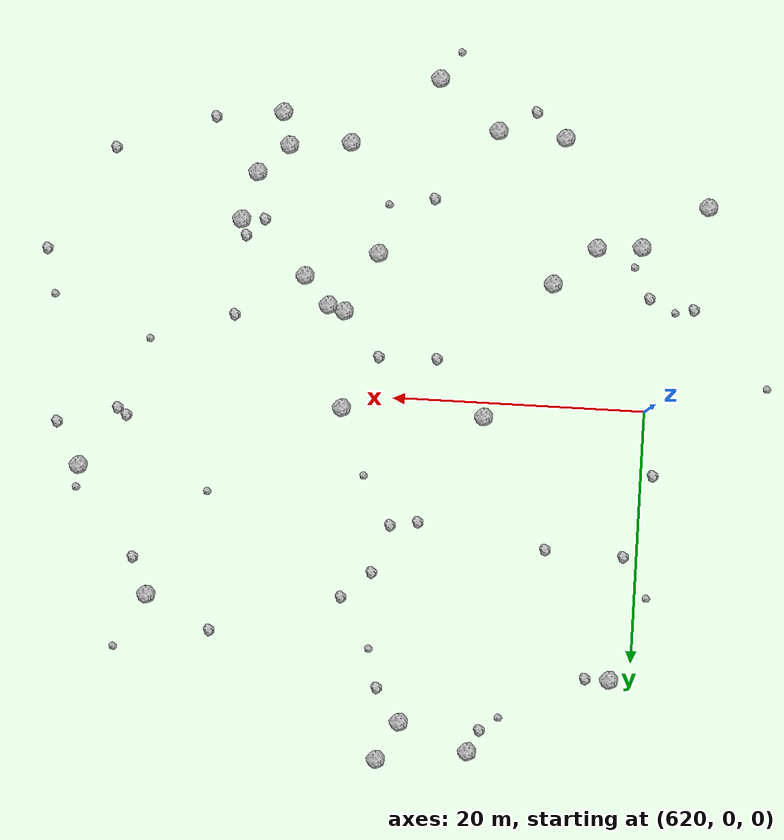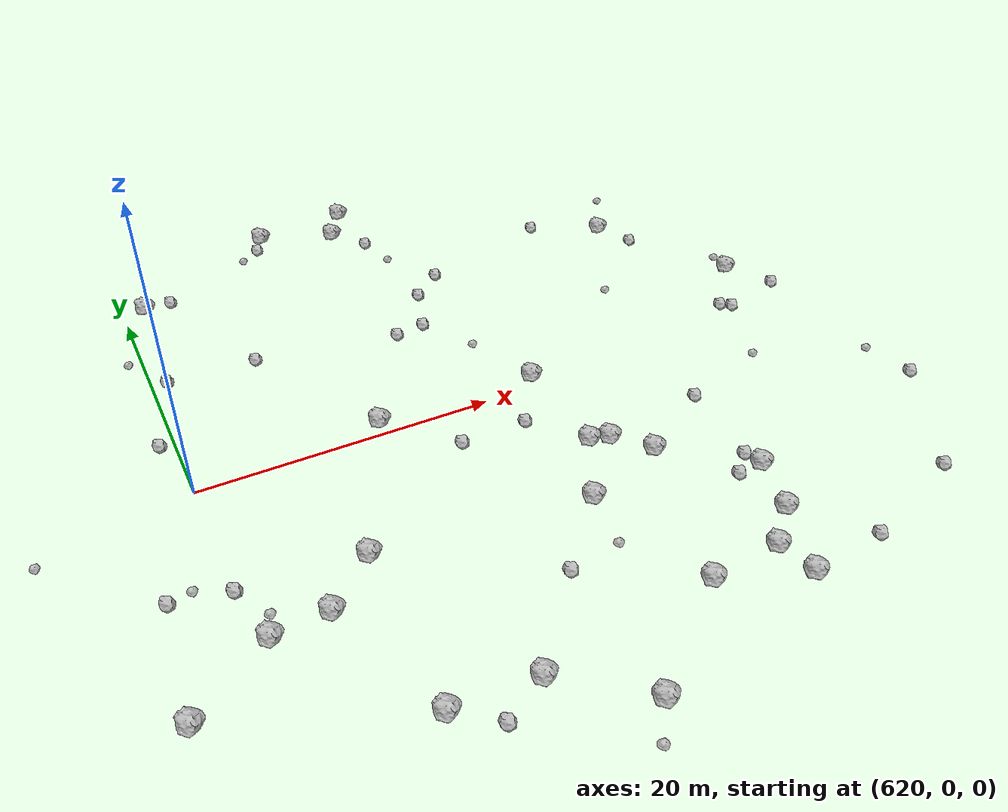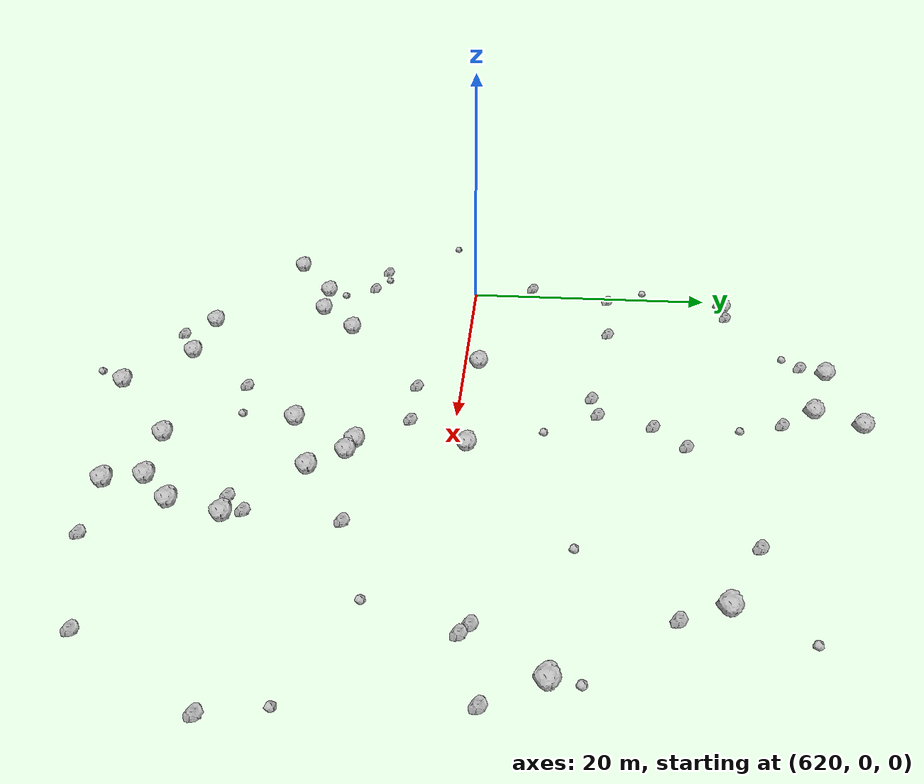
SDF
<sdf version="1.6">
 <world name="default">
  <include><uri>model://sun</uri></include>
  <model name="rock1_16_3">
   <include><uri>model://rock1</uri><pose>649.323635135728 -19.675310287557593 0.5 0 0 0</pose></include>
  </model>
  <model name="rock1_16_4">
   <include><uri>model://rock1</uri><pose>647.5188567928722 -9.352719610710068 0.5 0 0 0</pose></include>
  </model>
  <model name="rock1_16_5">
   <include><uri>model://rock1</uri><pose>664.6615946944336 6.658809230462609 0.5 0 0 0</pose></include>
  </model>
  <model name="rock1_16_6">
   <include><uri>model://rock1</uri><pose>638.1462607582813 25.631147984926884 0.5 0 0 0</pose></include>
  </model>
  <model name="rock1_16_7">
   <include><uri>model://rock1</uri><pose>645.5514769123371 -7.109107555626348 0.5 0 0 0</pose></include>
  </model>
  <model name="rock1_16_8">
   <include><uri>model://rock1</uri><pose>651.7245193596218 -17.379730004674187 0.5 0 0 0</pose></include>
  </model>
  <model name="rock1_16_9">
   <include><uri>model://rock1</uri><pose>652.7997807221767 -13.566433632291812 0.5 0 0 0</pose></include>
  </model>
  <model name="rock1_16_10">
   <include><uri>model://rock1</uri><pose>621.6851530444653 21.397650092536942 0.5 0 0 0</pose></include>
  </model>
  <model name="rock1_16_11">
   <include><uri>model://rock1</uri><pose>632.7589666041498 -21.699674818909628 0.5 0 0 0</pose></include>
  </model>
  <model name="rock1_16_12">
   <include><uri>model://rock1</uri><pose>649.9432981393616 -22.27549808454095 0.5 0 0 0</pose></include>
  </model>
  <model name="rock1_16_13">
   <include><uri>model://rock1</uri><pose>632.7306976947208 1.0900589440068025 0.5 0 0 0</pose></include>
  </model>
  <model name="rock1_16_14">
   <include><uri>model://rock1</uri><pose>658.7157504272972 16.61998943361901 0.5 0 0 0</pose></include>
  </model>
  <model name="rock1_16_15">
   <include><uri>model://rock1</uri><pose>637.6274527868696 -25.60379170467497 0.5 0 0 0</pose></include>
  </model>
  <model name="rock1_16_16">
   <include><uri>model://rock1</uri><pose>641.7817975287408 -11.44251051579078 0.5 0 0 0</pose></include>
  </model>
  <model name="rock1_16_17">
   <include><uri>model://rock1</uri><pose>624.4556565840346 -12.813887653023684 0.5 0 0 0</pose></include>
  </model>
  <model name="rock1_16_18">
   <include><uri>model://rock1</uri><pose>644.047416362816 0.9796400970507015 0.5 0 0 0</pose></include>
  </model>
  <model name="rock1_16_19">
   <include><uri>model://rock1</uri><pose>620.900836441411 -13.051365215589684 0.5 0 0 0</pose></include>
  </model>
  <model name="rock1_16_20">
   <include><uri>model://rock1</uri><pose>644.2488232371834 -6.705249882650005 0.5 0 0 0</pose></include>
  </model>
  <model name="rock1_16_21">
   <include><uri>model://rock1</uri><pose>632.6176629543776 27.668392253135544 0.5 0 0 0</pose></include>
  </model>
  <model name="rock1_16_22">
   <include><uri>model://rock1</uri><pose>639.802648312754 28.671553461341475 0.5 0 0 0</pose></include>
  </model>
  <model name="rock1_16_23">
   <include><uri>model://rock1</uri><pose>627.3979372327801 -21.42097787279134 0.5 0 0 0</pose></include>
  </model>
  <model name="rock1_16_24">
   <include><uri>model://rock1</uri><pose>627.7883064052132 -9.764854636103045 0.5 0 0 0</pose></include>
  </model>
  <model name="rock1_16_25">
   <include><uri>model://rock1</uri><pose>644.4423282608742 -20.13858246364161 0.5 0 0 0</pose></include>
  </model>
  <model name="rock1_16_26">
   <include><uri>model://rock1</uri><pose>615.7697321783413 -16.519215090434564 0.5 0 0 0</pose></include>
  </model>
  <model name="rock2_16_0">
   <include><uri>model://rock2</uri><pose>631.7297860429519 25.951747055536487 0.3 0 0 0</pose></include>
  </model>
  <model name="rock2_16_1">
   <include><uri>model://rock2</uri><pose>620.0398407163354 -8.997344898655342 0.3 0 0 0</pose></include>
  </model>
  <model name="rock2_16_2">
   <include><uri>model://rock2</uri><pose>659.9456067426785 13.726954323792732 0.3 0 0 0</pose></include>
  </model>
  <model name="rock2_16_3">
   <include><uri>model://rock2</uri><pose>616.4722274919784 -8.29082350567144 0.3 0 0 0</pose></include>
  </model>
  <model name="rock2_16_4">
   <include><uri>model://rock2</uri><pose>621.0512797070361 11.618351607750682 0.3 0 0 0</pose></include>
  </model>
  <model name="rock2_16_5">
   <include><uri>model://rock2</uri><pose>639.6752855893872 10.114809974625722 0.3 0 0 0</pose></include>
  </model>
  <model name="rock2_16_6">
   <include><uri>model://rock2</uri><pose>619.059283854676 5.073356620315124 0.3 0 0 0</pose></include>
  </model>
  <model name="rock2_16_7">
   <include><uri>model://rock2</uri><pose>640.9435085974299 13.927347328120831 0.3 0 0 0</pose></include>
  </model>
  <model name="rock2_16_8">
   <include><uri>model://rock2</uri><pose>653.5664367592224 19.19435677911372 0.3 0 0 0</pose></include>
  </model>
  <model name="rock2_16_9">
   <include><uri>model://rock2</uri><pose>668.0531626017771 -10.406943687946526 0.3 0 0 0</pose></include>
  </model>
  <model name="rock2_16_10">
   <include><uri>model://rock2</uri><pose>661.7863963366565 1.9535058979403637 0.3 0 0 0</pose></include>
  </model>
  <model name="rock2_16_11">
   <include><uri>model://rock2</uri><pose>650.9333909236669 -13.665607929963045 0.3 0 0 0</pose></include>
  </model>
  <model name="rock2_16_12">
   <include><uri>model://rock2</uri><pose>636.6657794035633 -3.277795037221477 0.3 0 0 0</pose></include>
  </model>
  <model name="rock2_16_13">
   <include><uri>model://rock2</uri><pose>640.0465061385448 23.037691117650517 0.3 0 0 0</pose></include>
  </model>
  <model name="rock2_16_14">
   <include><uri>model://rock2</uri><pose>661.0615742141754 2.4919117857847652 0.3 0 0 0</pose></include>
  </model>
  <model name="rock2_16_15">
   <include><uri>model://rock2</uri><pose>637.5137298327845 -16.00334532254125 0.3 0 0 0</pose></include>
  </model>
  <model name="rock2_16_16">
   <include><uri>model://rock2</uri><pose>663.0305445742493 -18.735814478272953 0.3 0 0 0</pose></include>
  </model>
  <model name="rock2_16_17">
   <include><uri>model://rock2</uri><pose>643.2745891458998 16.009136459906152 0.3 0 0 0</pose></include>
  </model>
  <model name="rock2_16_18">
   <include><uri>model://rock2</uri><pose>641.2944951230875 -3.1927082455780464 0.3 0 0 0</pose></include>
  </model>
  <model name="rock2_16_19">
   <include><uri>model://rock2</uri><pose>637.478728175264 9.744410834601766 0.3 0 0 0</pose></include>
  </model>
  <model name="rock2_16_20">
   <include><uri>model://rock2</uri><pose>652.9092820721087 -5.95756627694071 0.3 0 0 0</pose></include>
  </model>
  <model name="rock2_16_21">
   <include><uri>model://rock2</uri><pose>623.5740088154481 21.42318265466656 0.3 0 0 0</pose></include>
  </model>
  <model name="rock2_16_22">
   <include><uri>model://rock2</uri><pose>629.7770516311056 -23.342422611344638 0.3 0 0 0</pose></include>
  </model>
  <model name="rock2_16_23">
   <include><uri>model://rock2</uri><pose>666.5428516283931 3.3080712710373845 0.3 0 0 0</pose></include>
  </model>
  <model name="rock2_16_24">
   <include><uri>model://rock2</uri><pose>655.2280336201087 -21.621883783046144 0.3 0 0 0</pose></include>
  </model>
  <model name="rock2_16_25">
   <include><uri>model://rock2</uri><pose>652.3527350449193 -12.30118756409119 0.3 0 0 0</pose></include>
  </model>
  <model name="rock2_16_26">
   <include><uri>model://rock2</uri><pose>627.2766245028882 11.384614553784154 0.3 0 0 0</pose></include>
  </model>
  <model name="rock3_16_0">
   <include><uri>model://rock3</uri><pose>667.2350944501476 -6.8641124210105104 0.2 0 0 0</pose></include>
  </model>
  <model name="rock3_16_1">
   <include><uri>model://rock3</uri><pose>619.0444489171023 14.774757070215202 0.2 0 0 0</pose></include>
  </model>
  <model name="rock3_16_2">
   <include><uri>model://rock3</uri><pose>635.9826231632339 -27.84284976157648 0.2 0 0 0</pose></include>
  </model>
  <model name="rock3_16_3">
   <include><uri>model://rock3</uri><pose>661.0877755548665 20.845300407257533 0.2 0 0 0</pose></include>
  </model>
  <model name="rock3_16_4">
   <include><uri>model://rock3</uri><pose>664.7178212801483 8.391916647304939 0.2 0 0 0</pose></include>
  </model>
  <model name="rock3_16_5">
   <include><uri>model://rock3</uri><pose>621.3313441640363 -11.468129668476944 0.2 0 0 0</pose></include>
  </model>
  <model name="rock3_16_6">
   <include><uri>model://rock3</uri><pose>617.9273428830859 -8.003740076016147 0.2 0 0 0</pose></include>
  </model>
  <model name="rock3_16_7">
   <include><uri>model://rock3</uri><pose>659.4906490289937 -3.7373019172189466 0.2 0 0 0</pose></include>
  </model>
  <model name="rock3_16_8">
   <include><uri>model://rock3</uri><pose>630.2594668054323 24.840388627875726 0.2 0 0 0</pose></include>
  </model>
  <model name="rock3_16_9">
   <include><uri>model://rock3</uri><pose>640.8247778963981 19.94914165951544 0.2 0 0 0</pose></include>
  </model>
  <model name="rock3_16_10">
   <include><uri>model://rock3</uri><pose>641.9621022249746 6.249442080447466 0.2 0 0 0</pose></include>
  </model>
  <model name="rock3_16_11">
   <include><uri>model://rock3</uri><pose>641.0981392666536 -15.409195397512978 0.2 0 0 0</pose></include>
  </model>
  <model name="rock3_16_12">
   <include><uri>model://rock3</uri><pose>654.2962831763936 8.165892514382122 0.2 0 0 0</pose></include>
  </model>
  <model name="rock3_16_13">
   <include><uri>model://rock3</uri><pose>610.3266044974716 -2.3433955707921648 0.2 0 0 0</pose></include>
  </model>
 </world>
</sdf>
